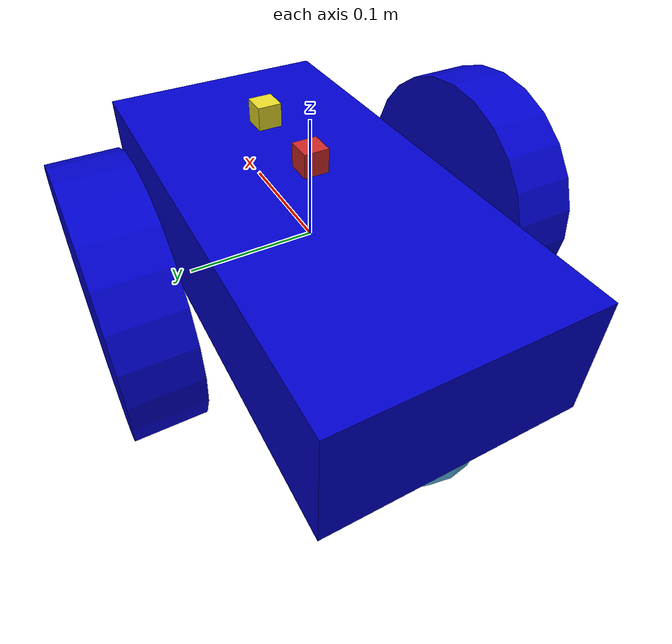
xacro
<?xml version='1.0'?>

<robot name="localization" xmlns:xacro="http://www.ros.org/wiki/xacro">
 <xacro:include filename="$(find localization)/urdf/robot.gazebo" />

  <link name="base_footprint" />

  <material name="blue">
    <color rgba="0 0 0.8 1" />
  </material>

<!-- ..................base link.................. -->

  <joint name="bae_footprint_joint" type="fixed">
    <origin xyz="0 0 0" rpy="0 0 0" />
    <parent link="base_footprint"/>
    <child link="base_link" />
  </joint>

  <link name='base_link'>
    <pose>0 0 0.1 0 0 0</pose>

    <inertial>
      <mass value="15.0"/>
      <origin xyz="0.0 0 0" rpy=" 0 0 0"/>
      <inertia
          ixx="0.1" ixy="0" ixz="0"
          iyy="0.1" iyz="0"
          izz="0.1"
      />
    </inertial>

    <collision name='collision'>
      <origin xyz="0 0 0" rpy=" 0 0 0"/>
      <geometry>
        <box size=".4 .2 .1"/>
      </geometry>
    </collision>

    <visual name='base_link_visual'>
      <origin xyz="0 0 0" rpy=" 0 0 0"/>
      <geometry>
        <box size=".4 .2 .1"/>
      </geometry>
      <material name="blue"/>
    </visual>

    <collision name='back_caster_collision'>
      <origin xyz="-0.15 0 -0.05" rpy=" 0 0 0"/>
      <geometry>
        <sphere radius="0.0499"/>
      </geometry>
    </collision>

    <visual name='back_caster_visual'>
      <origin xyz="-0.15 0 -0.05" rpy=" 0 0 0"/>
      <geometry>
        <sphere radius="0.05"/>
      </geometry>
    </visual>

    <collision name='front_caster_collision'>
      <origin xyz="0.15 0 -0.05" rpy=" 0 0 0"/>
      <geometry>
        <sphere radius="0.0499"/>
      </geometry>
    </collision>

    <visual name='front_caster_visual'>
      <origin xyz="0.15 0 -0.05" rpy=" 0 0 0"/>
      <geometry>
        <sphere radius="0.05"/>
      </geometry>
    </visual>

  </link>
<!-- ..................left wheel link.................. -->

  <link name="left_wheel">
    <inertial>
      <origin xyz="0 0 0" rpy=" 0 .1 .1"/>
      <mass value="5.0"/>
      <inertia
	ixx="0.1" ixy="0" ixz="0"
	iyy="0.1" iyz="0"
	izz="0.1"
      />
    </inertial>

    <collision name='collision'>
      <origin xyz="0 0 0" rpy=" 0 1.5707 1.5707"/>
      <geometry>
        <cylinder  radius="0.1" length="0.05"/>
      </geometry>
    </collision>

    <visual name='left_wheel_visual'>
      <origin xyz="0 0 0" rpy=" 0 1.5707 1.5707"/>
      <geometry>
        <cylinder  radius="0.1" length="0.05"/>
      </geometry>
      <material name="blue"/>
    </visual>

  </link>

  <joint type="continuous" name="left_wheel_hinge">
    <origin xyz="0 0.15 0" rpy="0 0 0"/>
    <child link="left_wheel"/>
    <parent link="base_link"/>
    <axis xyz="0 1 0" rpy="0 0 0"/>
    <limit effort="10000" velocity="1000"/>
    <dynamics damping="1.0" friction="1.0"/>
  </joint>

<!-- ..................right wheel link.................. -->

  <link name="right_wheel">
    <inertial>
     <origin xyz="0 0 0" rpy=" 0 1.5707 1.5707"/>
     <mass value="5.0"/>
     <inertia
       ixx="0.1" ixy="0" ixz="0"
       iyy="0.1" iyz="0"
       izz="0.1"
      />
    </inertial>

    <collision name='collision'>
      <origin xyz="0 0 0" rpy=" 0 1.5707 1.5707"/>
      <geometry>
        <cylinder  radius="0.1" length="0.05"/>
      </geometry>
    </collision>

    <visual name='right_wheel_visual'>
      <origin xyz="0 0 0" rpy=" 0 1.5707 1.5707"/>
      <geometry>
        <cylinder  radius="0.1" length="0.05"/>
      </geometry>
      <material name="blue"/>
    </visual>

   </link>

   <joint type="continuous" name="right_wheel_hinge">
    <origin xyz="0 -0.15 0" rpy=" 0 0 0"/>
    <child link="right_wheel"/>
    <parent link="base_link"/>
    <axis xyz="0 1 0" rpy=" 0 0 0"/>
    <limit effort="10000" velocity="1000"/>
    <dynamics damping="1.0" friction="1.0"/>
   </joint>

<!-- ..................camera joint link.................. -->

   <link name="left_camera">
     <inertial>
	<origin xyz="0 0 0" rpy=" 0 0 0" />
	<mass value="0.1"	/>
	<inertia
	  ixx="1e-6" ixy="0" ixz="0"
	  iyy="1e-6" iyz="0"
	  izz="1e-6"
	  />
     </inertial>

     <collision>
	<origin xyz="0 0 0" rpy=" 0 0 0" />
	<geometry>
	<box size="0.05 0.05 0.05"/>
	</geometry>
     </collision>

     <visual>
      <origin xyz="0 0 0" rpy=" 0 0 0" />
      <geometry>
	    <box size="0.05 0.05 0.05"/>
      </geometry>

     </visual>

    </link>

    <joint type="fixed" name="left_camera_joint">
	<origin xyz="0.2 0 0" rpy=" 0 0 0" />
	<child  link="left_camera"/>
	<parent	link="base_link"/>
    </joint>

<!-- ..................imu sensor link.................. -->

    <link name="imu_sensor">
       <inertial>
        <origin xyz="0 0 0" rpy=" 0 0 0" />
        <mass value="0.01" />
        <inertia
	  ixx="0.00000015" ixy="0" ixz="0"
	  iyy="0.00000015" iyz="0"
	  izz="0.00000015"
	  />
	</inertial>

	<collision>
    	 <origin xyz="0 0 0" rpy=" 0 0 0" />
	 <geometry>
	   <box size="0.02 0.02 0.02"/>
	 </geometry>
	</collision>

	<visual>
          <origin xyz="0 0 0" rpy=" 0 0 0" />
	  <geometry>
	    <box size="0.02 0.02 0.02"/>
	  </geometry>
	</visual>

      </link>

      <joint type="fixed" name="imu_sensor_joint">
	<axis xyz="1 0 0" rpy=" 0 0 0" />
	<origin xyz="0 0 0.07" />
	<child  link="imu_sensor"/>
	<parent	link="base_link"/>
      </joint>

<!-- ..................gps sensor link.................. -->

	<link name="GPS_sensor">
       <inertial>
        <origin xyz="0 0 0" rpy=" 0 0 0" />
        <mass value="0.01" />
        <inertia
	  ixx="0.00000015" ixy="0" ixz="0"
	  iyy="0.00000015" iyz="0"
	  izz="0.00000015"
	  />
	</inertial>

	<collision>
    	 <origin xyz="0 0 0" rpy=" 0 0 0" />
	 <geometry>
	   <box size="0.02 0.02 0.02"/>
	 </geometry>
	</collision>

	<visual>
          <origin xyz="0 0 0" rpy=" 0 0 0" />
	  <geometry>
	    <box size="0.02 0.02 0.02"/>
	  </geometry>
	</visual>

      </link>

      <joint type="fixed" name="GPS_sensor_joint">
	<axis xyz="1 0 0" rpy=" 0 0 0" />
	<origin xyz="0.08 0 0.07" />
	<child  link="GPS_sensor"/>
	<parent	link="base_link"/>
      </joint>

</robot>
